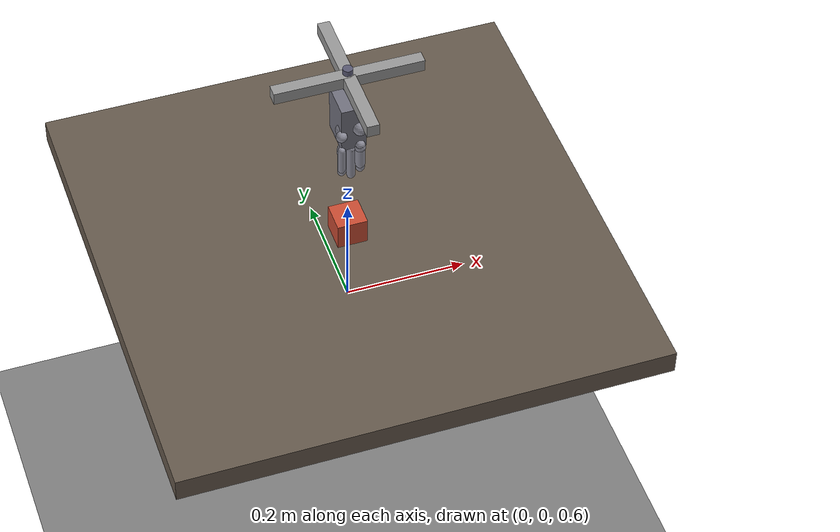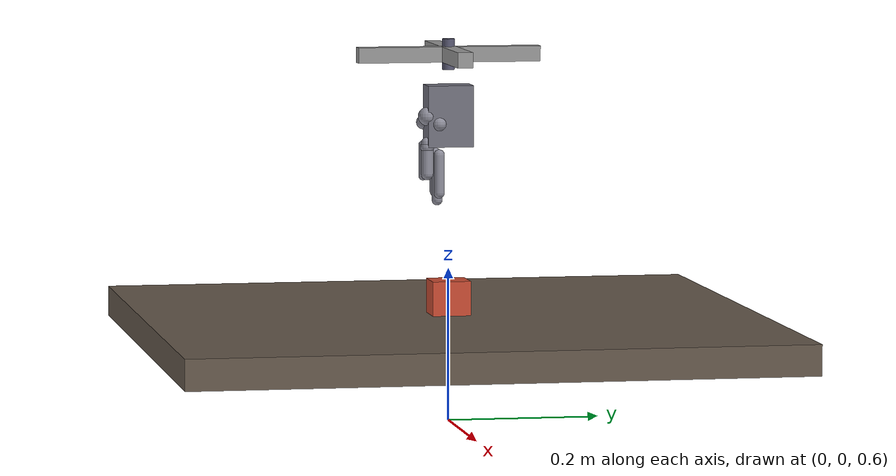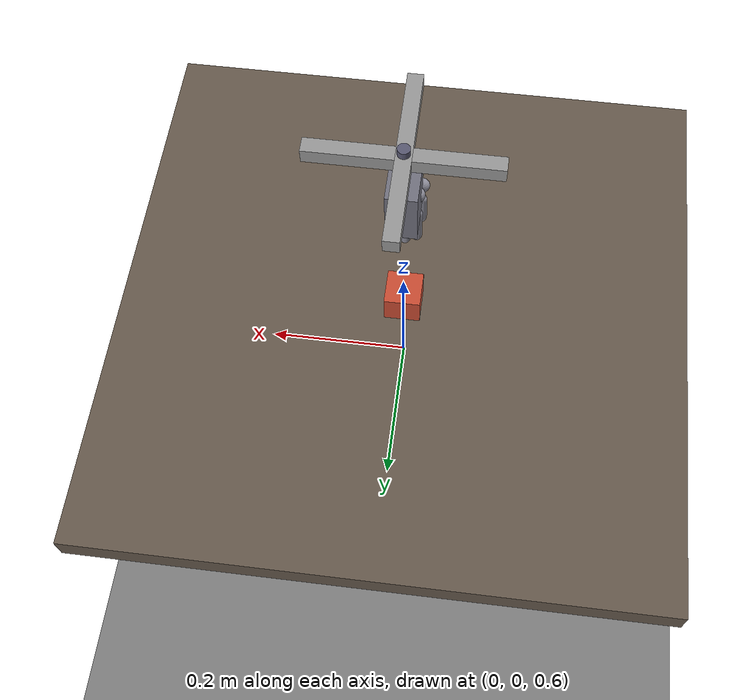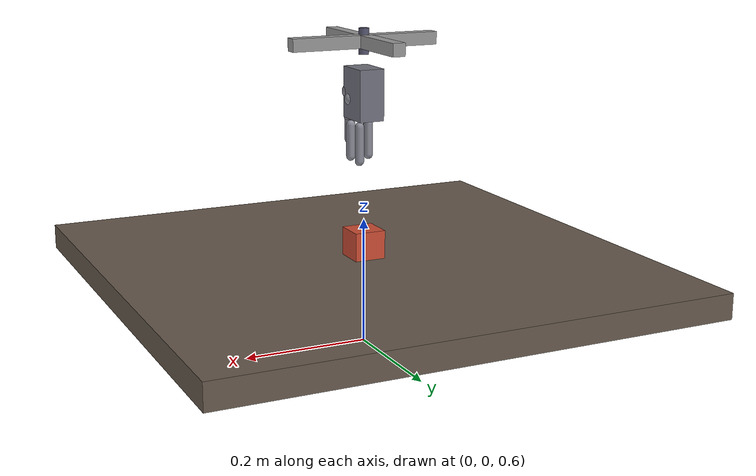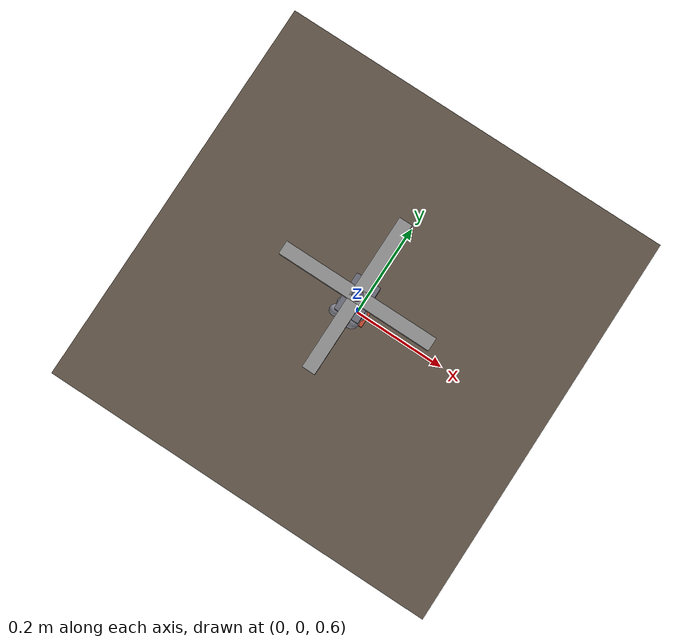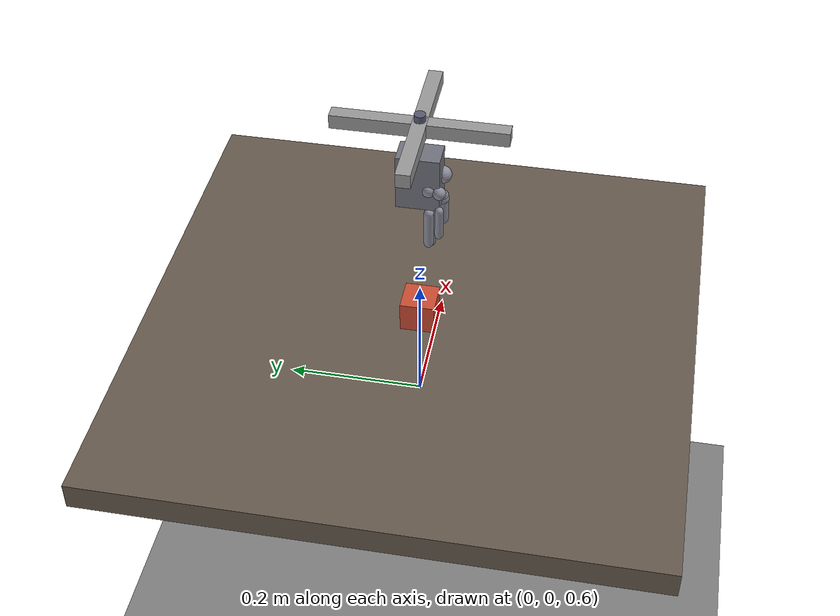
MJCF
<?xml version="1.0"?>
<mujoco model="ylyw_cross_embodiment_hand_3axis">
  <compiler angle="radian"/>
  <option timestep="0.002" gravity="0 0 -9.81">
    <flag contact="enable"/>
  </option>

  <asset>
    <material name="palm" rgba="0.45 0.45 0.50 1"/>
    <material name="finger" rgba="0.55 0.55 0.60 1"/>
    <material name="object" rgba="0.8 0.3 0.2 1"/>
    <material name="table" rgba="0.4 0.35 0.3 1"/>
    <material name="arm" rgba="0.35 0.35 0.45 1"/>
  </asset>

  <default>
    <geom type="capsule" condim="4" friction="1.5 0.01 0.001"/>
    <joint axis="0 0 1" damping="2.0" armature="0.005" frictionloss="0.01"/>
    <position kp="50" kv="5"/>
  </default>

  <worldbody>
    <light pos="0 0 5" dir="0 0 -1" diffuse="0.8 0.8 0.8"/>
    <light pos="2 2 4" dir="-1 -1 -2" diffuse="0.8 0.8 0.8"/>
    <light pos="-2 2 3" dir="1 -1 -1" diffuse="0.3 0.3 0.3"/>

    <!-- 桌面和地面 -->
    <geom name="floor" type="plane" size="2 2 0.01" pos="0 0 0"/>
    <geom name="table" type="box" size="0.4 0.4 0.02" pos="0 0 0.72" material="table"/>

    <!-- 俯视摄像头 -->
    <camera name="topview" pos="0 0 1.8" xyaxes="1 0 0 0 1 0" mode="fixed"/>
    <!-- 侧视摄像头（从右前方45°向下看桌面中心） -->
    <camera name="sideview" pos="0.7 0 0.9" xyaxes="0 -1 0 0.707 0 0.707" mode="fixed"/>
    <!-- 手腕第一视角（挂载在palm上，面向物体方向） -->
    <camera name="egocentric" pos="0 0.1 1.0" xyaxes="1 0 0 0 0 1" mode="fixed"/>
    <body name="object" pos="0 0 0.76">
      <freejoint name="obj_free"/>
      <geom name="obj_geom" type="box" size="0.025 0.025 0.025" mass="0.03" material="object"/>
    </body>

    <!-- 3轴笛卡尔臂 (XYZ平移) + 手腕 (pitch/yaw旋转)               -->
    <body name="arm_base" pos="0 0 1.08">
      <!-- X轴平移（左右） ±80mm -->
      <joint name="slide_x" type="slide" axis="1 0 0" range="-0.08 0.08" damping="0.5"/>
      <geom name="rail_x" type="box" size="0.12 0.01 0.01" pos="0 0 0" rgba="0.6 0.6 0.6 1"/>

      <body name="arm_y" pos="0 0 0">
        <!-- Y轴平移（前后） ±80mm -->
        <joint name="slide_y" type="slide" axis="0 1 0" range="-0.08 0.08" damping="0.5"/>
        <geom name="rail_y" type="box" size="0.01 0.12 0.01" pos="0 0 0" rgba="0.6 0.6 0.6 1"/>

        <body name="arm_z" pos="0 0 0">
          <!-- Z轴升降（上下） 保留原来范围 -->
          <joint name="lift_z" type="slide" axis="0 0 1" range="-0.32 0.15" damping="0.5"/>
          <geom name="lift_rod" type="cylinder" size="0.008 0.02" pos="0 0 0" material="arm"/>

          <!-- 手腕（旋转） -->
          <body name="wrist" pos="0 0 -0.06">
            <geom name="wrist_joint" type="sphere" size="0.015" rgba="0.3 0.3 0.8 1"/>
            <!-- 俯仰 (pitch)：绕 X 轴，手掌向物体倾斜 -->
            <joint name="wrist_pitch" type="hinge" axis="1 0 0" range="-0.8 0.8" damping="2.0" armature="0.01"/>
            <!-- 偏转 (yaw)：绕 Z 轴，手掌左右摆动 -->
            <joint name="wrist_yaw"   type="hinge" axis="0 0 1" range="-0.6 0.6" damping="2.0" armature="0.01"/>

            <!-- 前伸微调（保留，但主要前伸改为由 slide_y 实现） -->
            <body name="palm_reach" pos="0 0 -0.02">
              <joint name="hand_reach" type="slide" axis="0 0 1" range="-0.02 0.10" damping="5.0"/>
              <geom name="reach_guide" type="box" size="0.003 0.003 0.003" rgba="0.3 0.3 0.5 1"/>

              <!-- 手掌 + 手指（保持与原来完全相同） -->
              <body name="palm" pos="0 0 0">
                <geom name="palm_geom" type="box" size="0.02 0.03 0.04" material="palm"/>

                <!-- ---- 拇指 (thumb, 2 DOF) ---- -->
                <body name="thumb_proximal" pos="0.01 -0.03 0.0">
                  <geom name="thumb_base" type="sphere" size="0.012" material="finger"/>
                  <joint name="THJ1" type="hinge" axis="0 1 0" range="-0.3 0.5"/>
                  <body name="thumb_distal" pos="0.0 0.0 -0.035">
                    <geom name="thumb_link" type="capsule" fromto="0 0 0 0 0 -0.04" size="0.008" material="finger"/>
                    <joint name="THJ2" type="hinge" axis="1 0 0" range="-0.3 0.6"/>
                    <geom name="thumb_tip" type="sphere" size="0.009" pos="0 0 -0.005" material="finger"/>
                  </body>
                </body>

                <!-- ---- 食指 ---- -->
                <body name="index_proximal" pos="0.015 -0.015 -0.01">
                  <geom name="index_base" type="sphere" size="0.010" material="finger"/>
                  <joint name="FFJ1" type="hinge" axis="1 0 0" range="-0.3 1.5"/>
                  <body name="index_distal" pos="0.0 0.0 -0.04">
                    <geom name="index_link" type="capsule" fromto="0 0 0 0 0 -0.05" size="0.007" material="finger"/>
                    <joint name="FFJ2" type="hinge" axis="1 0 0" range="-0.3 1.5"/>
                    <geom name="index_tip" type="sphere" size="0.007" pos="0 0 -0.005" material="finger"/>
                  </body>
                </body>

                <!-- ---- 中指 ---- -->
                <body name="middle_proximal" pos="0.0 -0.015 -0.01">
                  <geom name="middle_base" type="sphere" size="0.010" material="finger"/>
                  <joint name="MFJ1" type="hinge" axis="1 0 0" range="-0.3 1.5"/>
                  <body name="middle_distal" pos="0.0 0.0 -0.045">
                    <geom name="middle_link" type="capsule" fromto="0 0 0 0 0 -0.055" size="0.007" material="finger"/>
                    <joint name="MFJ2" type="hinge" axis="1 0 0" range="-0.3 1.5"/>
                    <geom name="middle_tip" type="sphere" size="0.007" pos="0 0 -0.005" material="finger"/>
                  </body>
                </body>

                <!-- ---- 无名指 ---- -->
                <body name="ring_proximal" pos="-0.015 -0.015 -0.01">
                  <geom name="ring_base" type="sphere" size="0.010" material="finger"/>
                  <joint name="RFJ1" type="hinge" axis="1 0 0" range="-0.3 1.5"/>
                  <body name="ring_distal" pos="0.0 0.0 -0.04">
                    <geom name="ring_link" type="capsule" fromto="0 0 0 0 0 -0.05" size="0.007" material="finger"/>
                    <joint name="RFJ2" type="hinge" axis="1 0 0" range="-0.3 1.5"/>
                    <geom name="ring_tip" type="sphere" size="0.007" pos="0 0 -0.005" material="finger"/>
                  </body>
                </body>

                <!-- ---- 小指 ---- -->
                <body name="pinky_proximal" pos="-0.02 -0.03 -0.01">
                  <geom name="pinky_base" type="sphere" size="0.009" material="finger"/>
                  <joint name="LFJ1" type="hinge" axis="1 0 0" range="-0.3 1.5"/>
                  <body name="pinky_distal" pos="0.0 0.0 -0.03">
                    <geom name="pinky_link" type="capsule" fromto="0 0 0 0 0 -0.04" size="0.006" material="finger"/>
                    <joint name="LFJ2" type="hinge" axis="1 0 0" range="-0.3 1.5"/>
                    <geom name="pinky_tip" type="sphere" size="0.006" pos="0 0 -0.004" material="finger"/>
                  </body>
                </body>

              </body><!-- palm -->
            </body><!-- palm_reach -->
          </body><!-- wrist -->
        </body><!-- arm_z -->
      </body><!-- arm_y -->
    </body><!-- arm_base -->
  </worldbody>

  <actuator>
    <!-- 3轴笛卡尔臂 -->
    <position name="slide_x" joint="slide_x" kp="500" kv="20"/>
    <position name="slide_y" joint="slide_y" kp="500" kv="20"/>
    <position name="lift_z" joint="lift_z" kp="500" kv="20"/>
    <!-- 手腕 -->
    <position name="wrist_pitch" joint="wrist_pitch" kp="80" kv="8"/>
    <position name="wrist_yaw"   joint="wrist_yaw"   kp="80" kv="8"/>
    <position name="hand_reach"  joint="hand_reach"  kp="200" kv="20"/>
    <!-- 手指 -->
    <position name="THJ1" joint="THJ1" kp="50" kv="5"/>
    <position name="THJ2" joint="THJ2" kp="50" kv="5"/>
    <position name="FFJ1" joint="FFJ1" kp="50" kv="5"/>
    <position name="FFJ2" joint="FFJ2" kp="50" kv="5"/>
    <position name="MFJ1" joint="MFJ1" kp="50" kv="5"/>
    <position name="MFJ2" joint="MFJ2" kp="50" kv="5"/>
    <position name="RFJ1" joint="RFJ1" kp="50" kv="5"/>
    <position name="RFJ2" joint="RFJ2" kp="50" kv="5"/>
    <position name="LFJ1" joint="LFJ1" kp="50" kv="5"/>
    <position name="LFJ2" joint="LFJ2" kp="50" kv="5"/>
  </actuator>

</mujoco>
